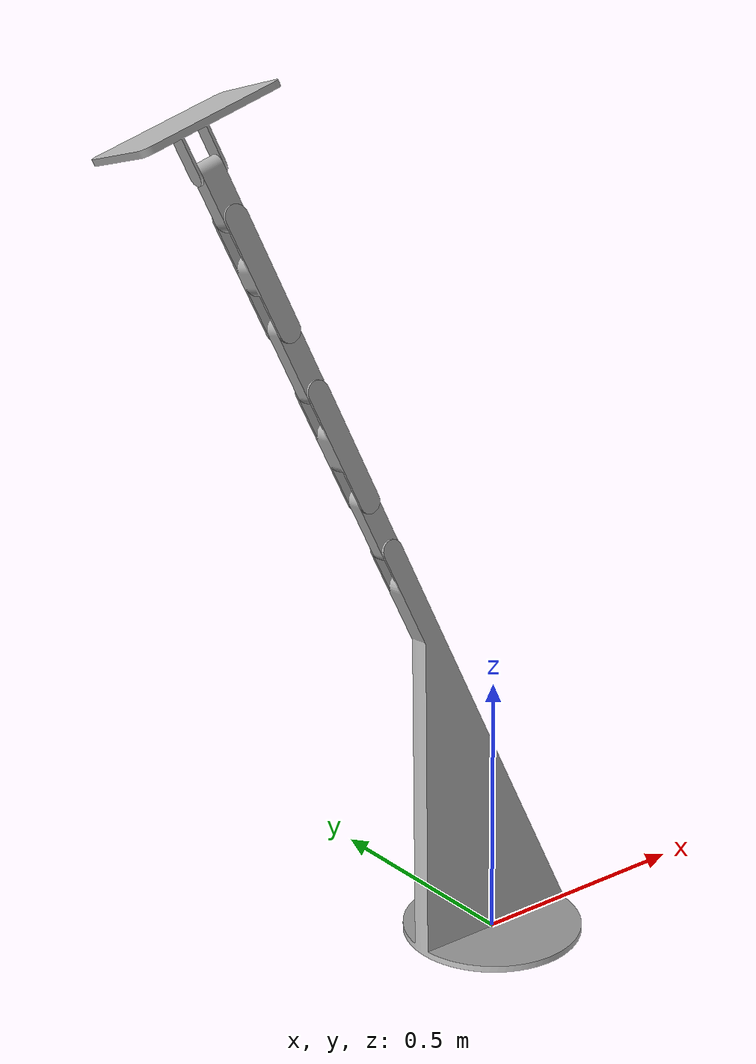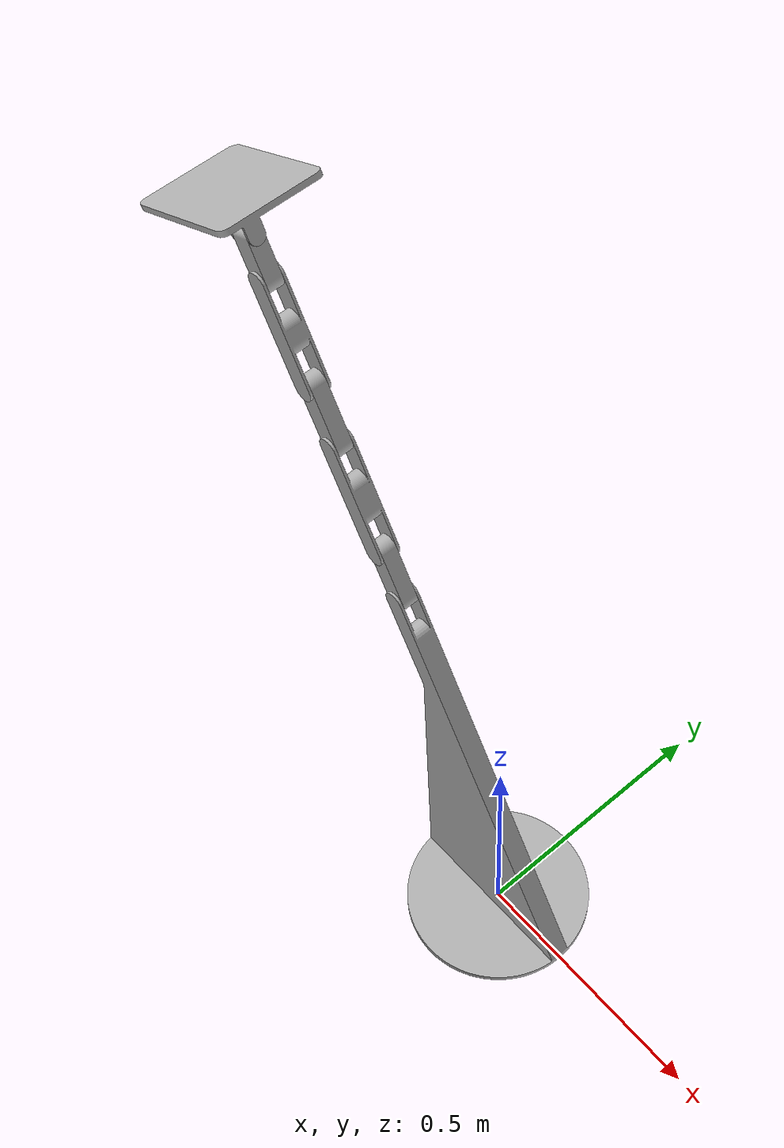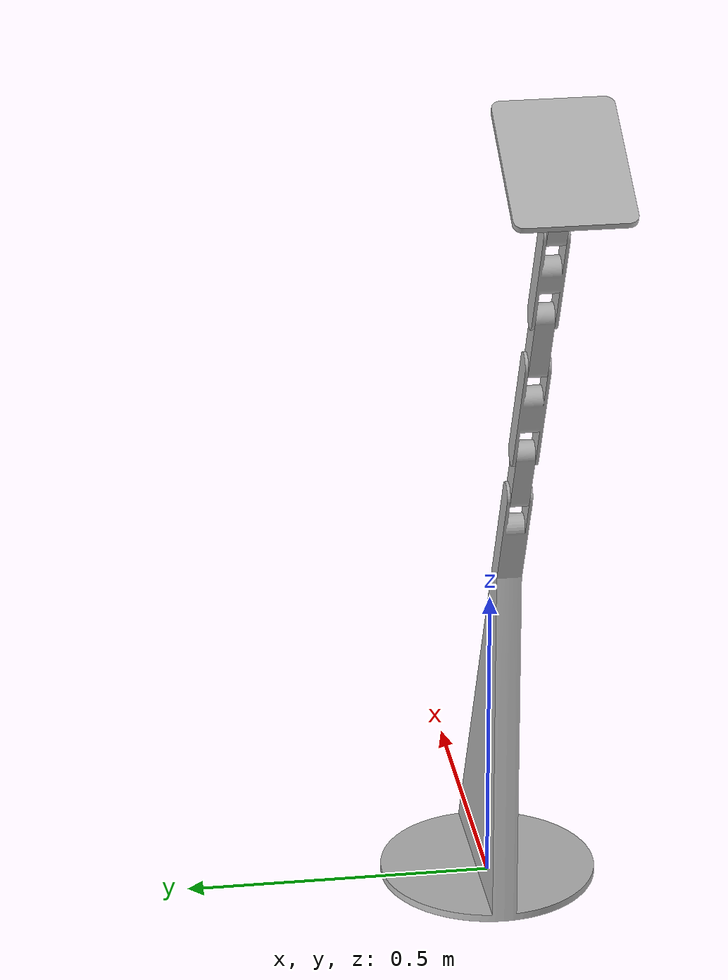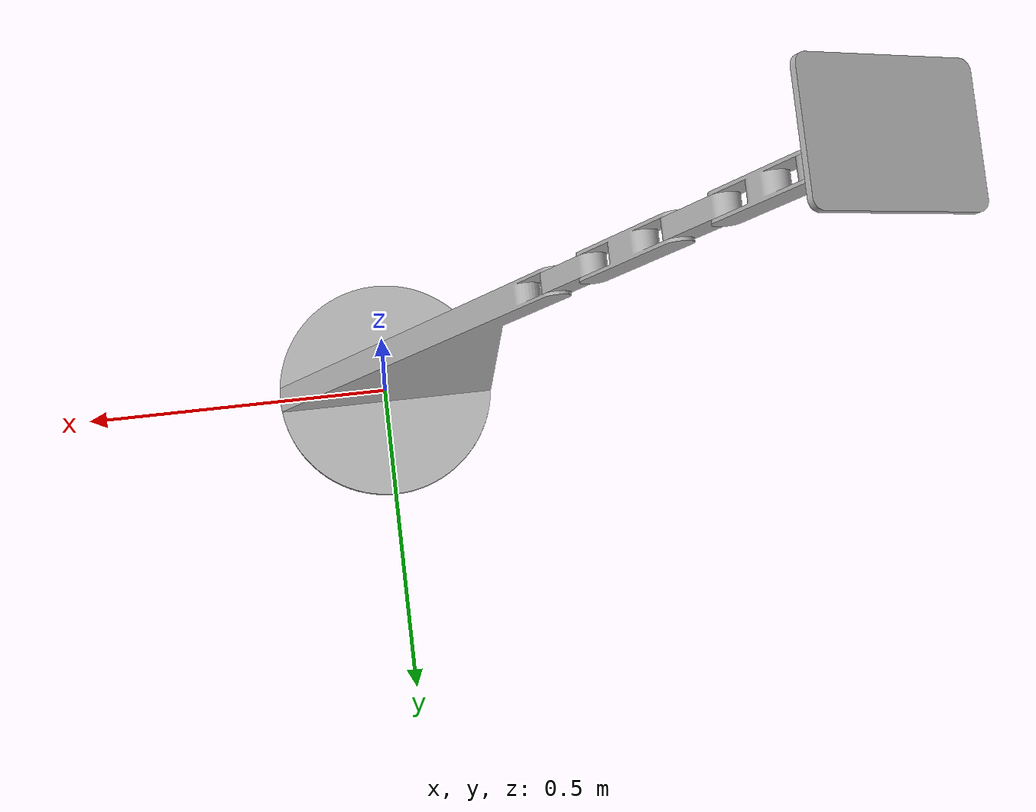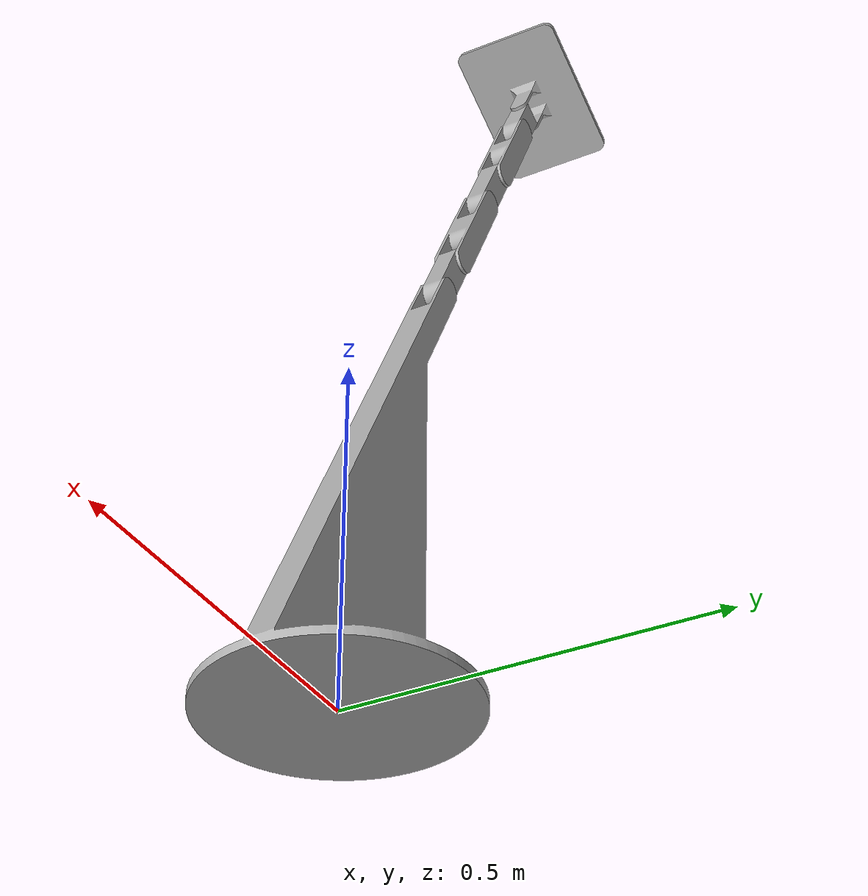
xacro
<?xml version="1.0" ?>
<robot name="jaime_neck" xmlns:xacro="http://www.ros.org/wiki/xacro">

<xacro:include filename="$(find jaime_neck_description)/urdf/materials.xacro" />
<xacro:include filename="$(find jaime_neck_description)/urdf/jaime_neck.trans" />
<xacro:include filename="$(find jaime_neck_description)/urdf/jaime_neck.gazebo" />
<link name="base_link">
  <inertial>
    <origin xyz="-0.0015071371607443052 -0.045178581236278964 0.1966099517276674" rpy="0 0 0"/>
    <mass value="49.1345111063547"/>
    <inertia ixx="1.874356" iyy="2.194951" izz="0.476531" ixy="0.0" iyz="-0.0" ixz="0.472297"/>
  </inertial>
  <visual>
    <origin xyz="0 0 0" rpy="0 0 0"/>
    <geometry>
      <mesh filename="package://jaime_neck_description/meshes/base_link.stl" scale="0.001 0.001 0.001"/>
    </geometry>
    <material name="silver"/>
  </visual>
  <collision>
    <origin xyz="0 0 0" rpy="0 0 0"/>
    <geometry>
      <mesh filename="package://jaime_neck_description/meshes/base_link.stl" scale="0.001 0.001 0.001"/>
    </geometry>
  </collision>
</link>

<link name="l1_1">
  <inertial>
    <origin xyz="-0.02269974234167807 -0.014999581236279005 0.0445499817871311" rpy="0 0 0"/>
    <mass value="1.237938027968155"/>
    <inertia ixx="0.001558" iyy="0.001961" izz="0.000588" ixy="0.0" iyz="-0.0" ixz="0.000668"/>
  </inertial>
  <visual>
    <origin xyz="0.194767 0.030179 -0.781292" rpy="0 0 0"/>
    <geometry>
      <mesh filename="package://jaime_neck_description/meshes/l1_1.stl" scale="0.001 0.001 0.001"/>
    </geometry>
    <material name="silver"/>
  </visual>
  <collision>
    <origin xyz="0.194767 0.030179 -0.781292" rpy="0 0 0"/>
    <geometry>
      <mesh filename="package://jaime_neck_description/meshes/l1_1.stl" scale="0.001 0.001 0.001"/>
    </geometry>
  </collision>
</link>

<link name="l2_1">
  <inertial>
    <origin xyz="-0.04766928370441903 -0.014999581236279012 0.09355598476474769" rpy="0 0 0"/>
    <mass value="1.5249840239746273"/>
    <inertia ixx="0.003613" iyy="0.004325" izz="0.001294" ixy="0.0" iyz="-0.0" ixz="0.001596"/>
  </inertial>
  <visual>
    <origin xyz="0.240166 0.030179 -0.870392" rpy="0 0 0"/>
    <geometry>
      <mesh filename="package://jaime_neck_description/meshes/l2_1.stl" scale="0.001 0.001 0.001"/>
    </geometry>
    <material name="silver"/>
  </visual>
  <collision>
    <origin xyz="0.240166 0.030179 -0.870392" rpy="0 0 0"/>
    <geometry>
      <mesh filename="package://jaime_neck_description/meshes/l2_1.stl" scale="0.001 0.001 0.001"/>
    </geometry>
  </collision>
</link>

<link name="l3_1">
  <inertial>
    <origin xyz="-0.024969768568086748 -0.014999581236279102 0.04900502573654353" rpy="0 0 0"/>
    <mass value="1.3321380279681612"/>
    <inertia ixx="0.001918" iyy="0.002414" izz="0.000696" ixy="0.0" iyz="-0.0" ixz="0.000841"/>
  </inertial>
  <visual>
    <origin xyz="0.335504 0.030179 -1.057504" rpy="0 0 0"/>
    <geometry>
      <mesh filename="package://jaime_neck_description/meshes/l3_1.stl" scale="0.001 0.001 0.001"/>
    </geometry>
    <material name="silver"/>
  </visual>
  <collision>
    <origin xyz="0.335504 0.030179 -1.057504" rpy="0 0 0"/>
    <geometry>
      <mesh filename="package://jaime_neck_description/meshes/l3_1.stl" scale="0.001 0.001 0.001"/>
    </geometry>
  </collision>
</link>

<link name="l4_1">
  <inertial>
    <origin xyz="-0.0419943547369534 -0.014999581236279088 0.08241849444516047" rpy="0 0 0"/>
    <mass value="1.2109840372908334"/>
    <inertia ixx="0.002516" iyy="0.002965" izz="0.000948" ixy="0.0" iyz="-0.0" ixz="0.001079"/>
  </inertial>
  <visual>
    <origin xyz="0.385443 0.030179 -1.155514" rpy="0 0 0"/>
    <geometry>
      <mesh filename="package://jaime_neck_description/meshes/l4_1.stl" scale="0.001 0.001 0.001"/>
    </geometry>
    <material name="silver"/>
  </visual>
  <collision>
    <origin xyz="0.385443 0.030179 -1.155514" rpy="0 0 0"/>
    <geometry>
      <mesh filename="package://jaime_neck_description/meshes/l4_1.stl" scale="0.001 0.001 0.001"/>
    </geometry>
  </collision>
</link>

<link name="l5_1">
  <inertial>
    <origin xyz="-0.016114391661114558 -0.01499958123627861 0.03162496588110897" rpy="0 0 0"/>
    <mass value="0.9654457744721715"/>
    <inertia ixx="0.000778" iyy="0.000983" izz="0.000346" ixy="0.0" iyz="-0.0" ixz="0.000298"/>
  </inertial>
  <visual>
    <origin xyz="0.469431 0.030179 -1.320351" rpy="0 0 0"/>
    <geometry>
      <mesh filename="package://jaime_neck_description/meshes/l5_1.stl" scale="0.001 0.001 0.001"/>
    </geometry>
    <material name="silver"/>
  </visual>
  <collision>
    <origin xyz="0.469431 0.030179 -1.320351" rpy="0 0 0"/>
    <geometry>
      <mesh filename="package://jaime_neck_description/meshes/l5_1.stl" scale="0.001 0.001 0.001"/>
    </geometry>
  </collision>
</link>

<link name="l6_1">
  <inertial>
    <origin xyz="-0.012920274632011619 4.1876372177535037e-07 0.06941179014315724" rpy="0 0 0"/>
    <mass value="3.703390903699381"/>
    <inertia ixx="0.013166" iyy="0.01768" izz="0.023034" ixy="0.0" iyz="-0.0" ixz="-0.006791"/>
  </inertial>
  <visual>
    <origin xyz="0.521301 0.045179 -1.378096" rpy="0 0 0"/>
    <geometry>
      <mesh filename="package://jaime_neck_description/meshes/l6_1.stl" scale="0.001 0.001 0.001"/>
    </geometry>
    <material name="silver"/>
  </visual>
  <collision>
    <origin xyz="0.521301 0.045179 -1.378096" rpy="0 0 0"/>
    <geometry>
      <mesh filename="package://jaime_neck_description/meshes/l6_1.stl" scale="0.001 0.001 0.001"/>
    </geometry>
  </collision>
</link>

<joint name="l1_to_base_link" type="revolute">
  <origin xyz="-0.194767 -0.030179 0.781292" rpy="0 0 0"/>
  <parent link="base_link"/>
  <child link="l1_1"/>
  <axis xyz="0.0 1.0 -0.0"/>
  <limit upper="0.872665" lower="0.0" effort="100" velocity="100"/>
</joint>

<joint name="l2_to_l1" type="revolute">
  <origin xyz="-0.045399 0.0 0.0891" rpy="0 0 0"/>
  <parent link="l1_1"/>
  <child link="l2_1"/>
  <axis xyz="0.0 1.0 -0.0"/>
  <limit upper="0.872665" lower="0.0" effort="100" velocity="100"/>
  <mimic joint="l1_to_base_link" multiplier="1.0" offset="0.0"/>

</joint>

<joint name="l3_to_l2" type="revolute">
  <origin xyz="-0.095338 0.0 0.187112" rpy="0 0 0"/>
  <parent link="l2_1"/>
  <child link="l3_1"/>
  <axis xyz="-0.0 1.0 -0.0"/>
  <limit upper="0.872665" lower="0.0" effort="100" velocity="100"/>
</joint>

<joint name="l4_to_l3" type="revolute">
  <origin xyz="-0.049939 0.0 0.09801" rpy="0 0 0"/>
  <parent link="l3_1"/>
  <child link="l4_1"/>
  <axis xyz="0.0 1.0 -0.0"/>
  <limit upper="0.872665" lower="0.0" effort="100" velocity="100"/>
  <mimic joint="l3_to_l2" multiplier="1.0" offset="0.0"/>
</joint>

<joint name="l5_to_l4" type="revolute">
  <origin xyz="-0.083988 0.0 0.164837" rpy="0 0 0"/>
  <parent link="l4_1"/>
  <child link="l5_1"/>
  <axis xyz="-0.0 1.0 -0.0"/>
  <limit upper="1.570796" lower="-1.570796" effort="100" velocity="100"/>
</joint>

<joint name="l6_to_l5" type="revolute">
  <origin xyz="-0.05187 -0.015 0.057745" rpy="0 0 0"/>
  <parent link="l5_1"/>
  <child link="l6_1"/>
  <axis xyz="-0.891007 -0.0 -0.45399"/>
  <limit upper="1.570796" lower="-1.570796" effort="100" velocity="100"/>
</joint>

</robot>

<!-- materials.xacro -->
<robot name="jaime_neck" xmlns:xacro="http://www.ros.org/wiki/xacro" >

<material name="silver">
  <color rgba="0.700 0.700 0.700 1.000"/>
</material>

</robot>

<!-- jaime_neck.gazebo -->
<robot name="jaime_neck" xmlns:xacro="http://www.ros.org/wiki/xacro" >

<xacro:property name="body_color" value="Gazebo/Silver" />

<gazebo>
  <plugin name="control" filename="libgazebo_ros_control.so"/>
</gazebo>
<gazebo reference="base_link">
  <material>${body_color}</material>
  <mu1>0.2</mu1>
  <mu2>0.2</mu2>
  <selfCollide>true</selfCollide>
  <gravity>true</gravity>
</gazebo>

<gazebo reference="l1_1">
  <material>${body_color}</material>
  <mu1>0.2</mu1>
  <mu2>0.2</mu2>
  <selfCollide>true</selfCollide>
</gazebo>

<gazebo reference="l2_1">
  <material>${body_color}</material>
  <mu1>0.2</mu1>
  <mu2>0.2</mu2>
  <selfCollide>true</selfCollide>
</gazebo>

<gazebo reference="l3_1">
  <material>${body_color}</material>
  <mu1>0.2</mu1>
  <mu2>0.2</mu2>
  <selfCollide>true</selfCollide>
</gazebo>

<gazebo reference="l4_1">
  <material>${body_color}</material>
  <mu1>0.2</mu1>
  <mu2>0.2</mu2>
  <selfCollide>true</selfCollide>
</gazebo>

<gazebo reference="l5_1">
  <material>${body_color}</material>
  <mu1>0.2</mu1>
  <mu2>0.2</mu2>
  <selfCollide>true</selfCollide>
</gazebo>

<gazebo reference="l6_1">
  <material>${body_color}</material>
  <mu1>0.2</mu1>
  <mu2>0.2</mu2>
  <selfCollide>true</selfCollide>
</gazebo>

</robot>
